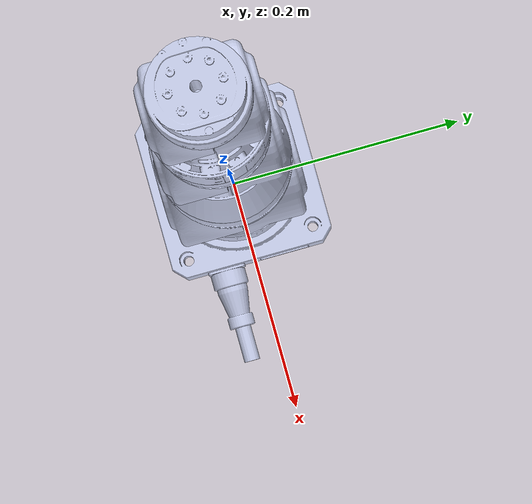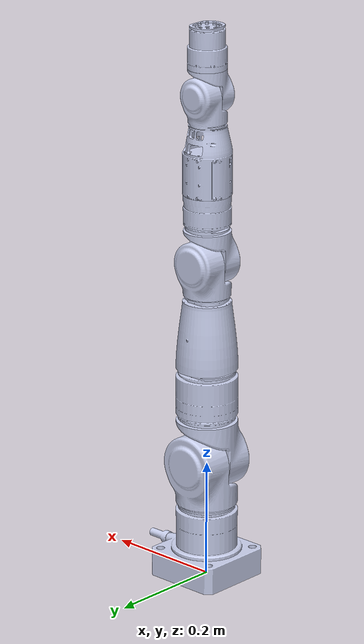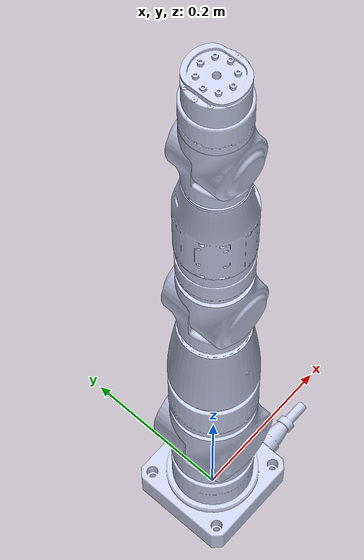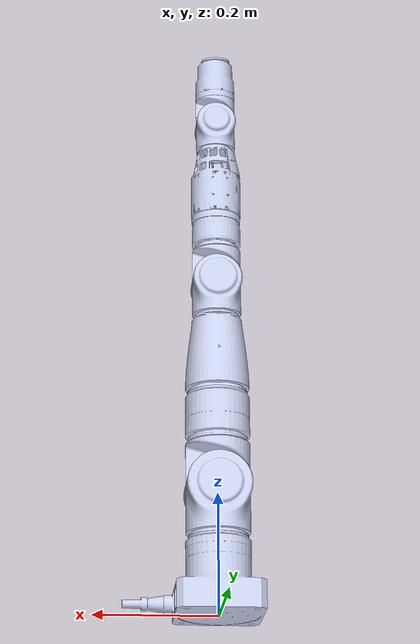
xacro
<?xml version="1.0" encoding="utf-8"?>
<robot
  name="DARS_right_arm" xmlns:xacro="http://www.ros.org/wiki/xacro">
  <link
    name="base_link">
    <inertial>
      <origin
        xyz="0.000286922689223201 -0.000193783025430286 0.061268550604531"
        rpy="0 0 0" />
      <mass
        value="1.12130208690655" />
      <inertia
        ixx="0.00286879446148421"
        ixy="4.16972264191551E-05"
        ixz="9.95025487701487E-06"
        iyy="0.00293845708504973"
        iyz="-1.77292246133471E-05"
        izz="0.00302949300291022" />
    </inertial>
    <visual>
      <origin
        xyz="0 0 0"
        rpy="0 0 0" />
      <geometry>
        <mesh
          filename="package://DARS_right_arm/meshes/base_link.STL" />
      </geometry>
      <material
        name="">
        <color
          rgba="0.792156862745098 0.819607843137255 0.933333333333333 1" />
      </material>
    </visual>
    <collision>
      <origin
        xyz="0 0 0"
        rpy="0 0 0" />
      <geometry>
        <mesh
          filename="package://DARS_right_arm/meshes/base_link.STL" />
      </geometry>
    </collision>
  </link>
  <link
    name="right_arm_link1">
    <inertial>
      <origin
        xyz="-0.019386 0.022015 -0.0014203"
        rpy="0 0 0" />
      <mass
        value="0.70473" />
      <inertia
        ixx="0.0014492"
        ixy="-0.00024227"
        ixz="3.5667E-05"
        iyy="0.00084125"
        iyz="3.1392E-05"
        izz="0.0013026" />
    </inertial>
    <visual>
      <origin
        xyz="0 0 0"
        rpy="0 0 0" />
      <geometry>
        <mesh
          filename="package://DARS_right_arm/meshes/right_arm_link1.STL" />
      </geometry>
      <material
        name="">
        <color
          rgba="0.79216 0.81961 0.93333 1" />
      </material>
    </visual>
    <collision>
      <origin
        xyz="0 0 0"
        rpy="0 0 0" />
      <geometry>
        <mesh
          filename="package://DARS_right_arm/meshes/right_arm_link1.STL" />
      </geometry>
    </collision>
  </link>
  <joint
    name="right_arm_joint1"
    type="revolute">
    <origin
      xyz="5.4262E-05 0.00022204 0.206"
      rpy="-1.5708 0 -1.57" />
    <parent
      link="base_link" />
    <child
      link="right_arm_link1" />
    <axis
      xyz="0 -1 0" />

    <limit lower="-${6.2832*0.5}" upper="${6.2832*0.5}" effort="10" velocity="0.791943" />
  </joint>
  <link
    name="right_arm_link2">
    <inertial>
      <origin
        xyz="-0.0101764547557658 0.0683779127650883 -0.000745580998248896"
        rpy="0 0 0" />
      <mass
        value="1.34252498565416" />
      <inertia
        ixx="0.00538329600220053"
        ixy="-0.000875688876901923"
        ixz="2.64484051171643E-05"
        iyy="0.00182396730654474"
        iyz="-1.50157955683347E-05"
        izz="0.00536182675727726" />
    </inertial>
    <visual>
      <origin
        xyz="0 0 0"
        rpy="0 0 0" />
      <geometry>
        <mesh
          filename="package://DARS_right_arm/meshes/right_arm_link2.STL" />
      </geometry>
      <material
        name="">
        <color
          rgba="0.792156862745098 0.819607843137255 0.933333333333333 1" />
      </material>
    </visual>
    <collision>
      <origin
        xyz="0 0 0"
        rpy="0 0 0" />
      <geometry>
        <mesh
          filename="package://DARS_right_arm/meshes/right_arm_link2.STL" />
      </geometry>
    </collision>
  </link>
  <joint
    name="right_arm_joint2"
    type="revolute">
    <origin
      xyz="0 0 0"
      rpy="0 0 -3.1416" />
    <parent
      link="right_arm_link1" />
    <child
      link="right_arm_link2" />
    <axis
      xyz="1 0 0" />

    <limit lower="-${6.2832*0.125}" upper="${6.2832*0.25}" effort="10" velocity="0.791943" />
  </joint>
  <link
    name="right_arm_link3">
    <inertial>
      <origin
        xyz="-0.0352526033444867 0.000317620105370953 -0.0047077145274422"
        rpy="0 0 0" />
      <mass
        value="1.07736180137224" />
      <inertia
        ixx="0.00117795652515341"
        ixy="-1.84277786522819E-05"
        ixz="0.000469868838578303"
        iyy="0.00458889626091873"
        iyz="-5.93123698985668E-06"
        izz="0.00456075704021931" />
    </inertial>
    <visual>
      <origin
        xyz="0 0 0"
        rpy="0 0 0" />
      <geometry>
        <mesh
          filename="package://DARS_right_arm/meshes/right_arm_link3.STL" />
      </geometry>
      <material
        name="">
        <color
          rgba="0.792156862745098 0.819607843137255 0.933333333333333 1" />
      </material>
    </visual>
    <collision>
      <origin
        xyz="0 0 0"
        rpy="0 0 0" />
      <geometry>
        <mesh
          filename="package://DARS_right_arm/meshes/right_arm_link3.STL" />
      </geometry>
    </collision>
  </link>
  <joint
    name="right_arm_joint3"
    type="revolute">
    <origin
      xyz="0 0.289 0"
      rpy="-1.5708 0 1.5708" />
    <parent
      link="right_arm_link2" />
    <child
      link="right_arm_link3" />
    <axis
      xyz="1 0 0" />

    <limit lower="-${6.2832*0.5}" upper="${6.2832*0.5}" effort="10" velocity="1.2671" />
  </joint>
  <link
    name="right_arm_link4">
    <inertial>
      <origin
        xyz="-0.00838965435821876 0.0525508064837414 -0.000565913869525259"
        rpy="0 0 0" />
      <mass
        value="0.604541191485651" />
      <inertia
        ixx="0.00146411042879646"
        ixy="-0.000248216087152858"
        ixz="7.15930474693799E-06"
        iyy="0.000479638206681757"
        iyz="-3.48004015916206E-06"
        izz="0.00146664455964936" />
    </inertial>
    <visual>
      <origin
        xyz="0 0 0"
        rpy="0 0 0" />
      <geometry>
        <mesh
          filename="package://DARS_right_arm/meshes/right_arm_link4.STL" />
      </geometry>
      <material
        name="">
        <color
          rgba="0.792156862745098 0.819607843137255 0.933333333333333 1" />
      </material>
    </visual>
    <collision>
      <origin
        xyz="0 0 0"
        rpy="0 0 0" />
      <geometry>
        <mesh
          filename="package://DARS_right_arm/meshes/right_arm_link4.STL" />
      </geometry>
    </collision>
  </link>
  <joint
    name="right_arm_joint4"
    type="revolute">
    <origin
      xyz="0.061 0 0"
      rpy="1.5708 1.5708 0" />
    <parent
      link="right_arm_link3" />
    <child
      link="right_arm_link4" />
    <axis
      xyz="1 0 0" />

    <limit lower="-${6.2832*0.125}" upper="${6.2832*0.25}" effort="10" velocity="1.5708" />
  </joint>
  <link
    name="right_arm_link5">
    <inertial>
      <origin
        xyz="-0.080781942643494 -0.00378005644415225 0.000274844650583805"
        rpy="0 0 0" />
      <mass
        value="0.583482841125638" />
      <inertia
        ixx="0.000460079584835922"
        ixy="-0.00020596127667892"
        ixz="-1.03103186963589E-05"
        iyy="0.00219361107570785"
        iyz="-4.40507639217703E-06"
        izz="0.00220499653071847" />
    </inertial>
    <visual>
      <origin
        xyz="0 0 0"
        rpy="0 0 0" />
      <geometry>
        <mesh
          filename="package://DARS_right_arm/meshes/right_arm_link5.STL" />
      </geometry>
      <material
        name="">
        <color
          rgba="0.792156862745098 0.819607843137255 0.933333333333333 1" />
      </material>
    </visual>
    <collision>
      <origin
        xyz="0 0 0"
        rpy="0 0 0" />
      <geometry>
        <mesh
          filename="package://DARS_right_arm/meshes/right_arm_link5.STL" />
      </geometry>
    </collision>
  </link>
  <joint
    name="right_arm_joint5"
    type="revolute">
    <origin
      xyz="0 0.112 0"
      rpy="3.033 0 -1.5708" />
    <parent
      link="right_arm_link4" />
    <child
      link="right_arm_link5" />
    <axis
      xyz="-1 0 0" />

    <limit lower="-${6.2832*0.5}" upper="${6.2832*0.5}" effort="10" velocity="1.5708" />
  </joint>
  <link
    name="right_arm_link6">
    <inertial>
      <origin
        xyz="-0.0133305992280831 0.012880144801466 -0.00081879111278782"
        rpy="0 0 0" />
      <mass
        value="0.1753680671742" />
      <inertia
        ixx="0.00013773172240138"
        ixy="-2.38343394121477E-05"
        ixz="3.3303864281338E-06"
        iyy="8.18768876543453E-05"
        iyz="2.97467577143616E-06"
        izz="0.000125900406006971" />
    </inertial>
    <visual>
      <origin
        xyz="0 0 0"
        rpy="0 0 0" />
      <geometry>
        <mesh
          filename="package://DARS_right_arm/meshes/right_arm_link6.STL" />
      </geometry>
      <material
        name="">
        <color
          rgba="0.792156862745098 0.819607843137255 0.933333333333333 1" />
      </material>
    </visual>
    <collision>
      <origin
        xyz="0 0 0"
        rpy="0 0 0" />
      <geometry>
        <mesh
          filename="package://DARS_right_arm/meshes/right_arm_link6.STL" />
      </geometry>
    </collision>
  </link>
  <joint
    name="right_arm_joint6"
    type="revolute">
    <origin
      xyz="-0.1725 -0.00099411 -0.00010834"
      rpy="3.1416 0.10856 -1.5708" />
    <parent
      link="right_arm_link5" />
    <child
      link="right_arm_link6" />
    <axis
      xyz="1 0 0" />

    <limit lower="-${6.2832*0.125}" upper="${6.2832*0.25}" effort="10" velocity="1.5708" />
  </joint>
  <link
    name="right_arm_link7">
    <inertial>
      <origin
        xyz="7.63078008575446E-06 0.020478995776156 -2.93004968121569E-05"
        rpy="0 0 0" />
      <mass
        value="0.196442009012192" />
      <inertia
        ixx="0.000119683219838743"
        ixy="-3.48297706217317E-08"
        ixz="-3.60498623522632E-07"
        iyy="9.65519757763088E-05"
        iyz="1.33856853074309E-07"
        izz="0.000120752802255629" />
    </inertial>
    <visual>
      <origin
        xyz="0 0 0"
        rpy="0 0 0" />
      <geometry>
        <mesh
          filename="package://DARS_right_arm/meshes/right_arm_link7.STL" />
      </geometry>
      <material
        name="">
        <color
          rgba="0.792156862745098 0.819607843137255 0.933333333333333 1" />
      </material>
    </visual>
    <collision>
      <origin
        xyz="0 0 0"
        rpy="0 0 0" />
      <geometry>
        <mesh
          filename="package://DARS_right_arm/meshes/right_arm_link7.STL" />
      </geometry>
    </collision>
  </link>
  <joint
    name="right_arm_joint7"
    type="revolute">
    <origin
      xyz="0 0.0995 0"
      rpy="3.1416 -0.38529 0" />
    <parent
      link="right_arm_link6" />
    <child
      link="right_arm_link7" />
    <axis
      xyz="0 -1 0" />

    <limit lower="-${6.2832*1}" upper="${6.2832*1}" effort="10" velocity="1.5708" />
  </joint>
</robot>
